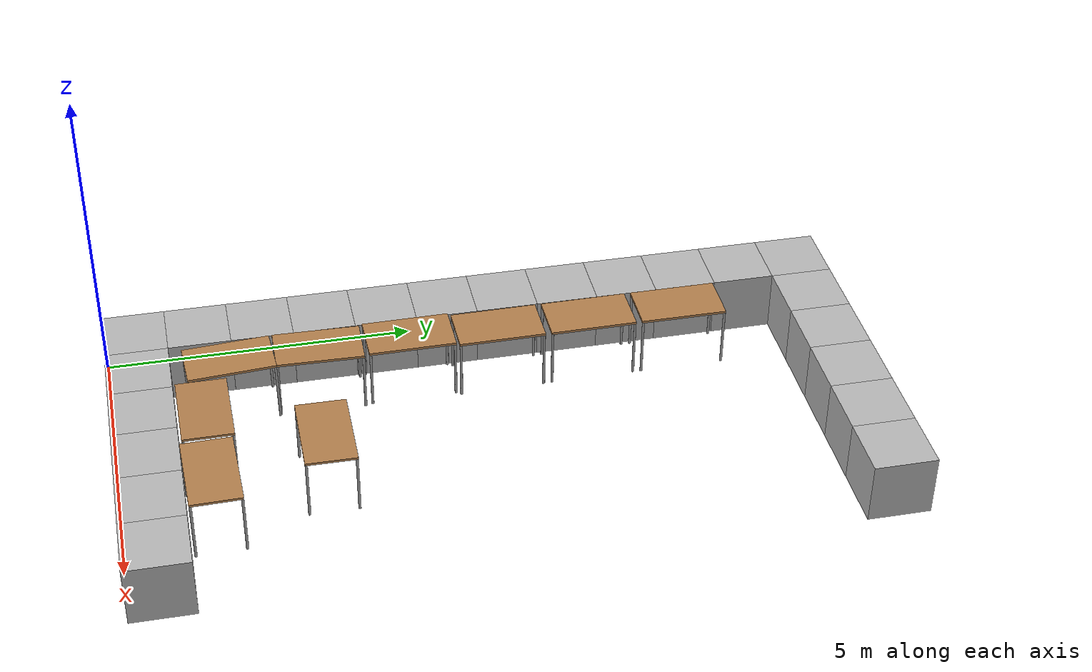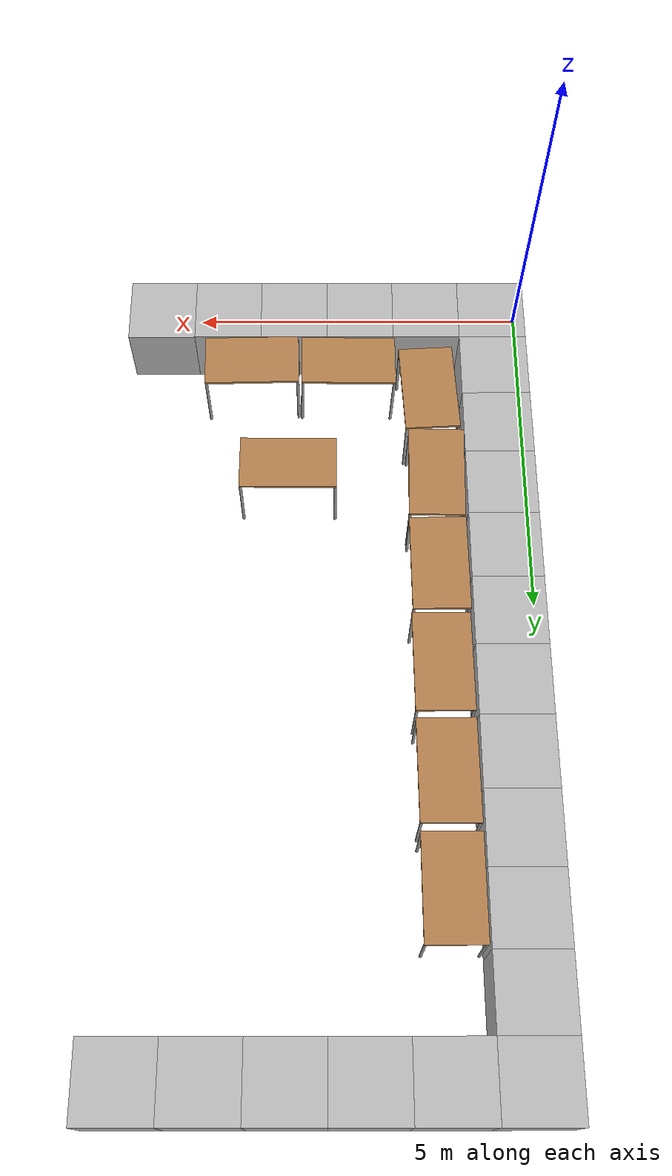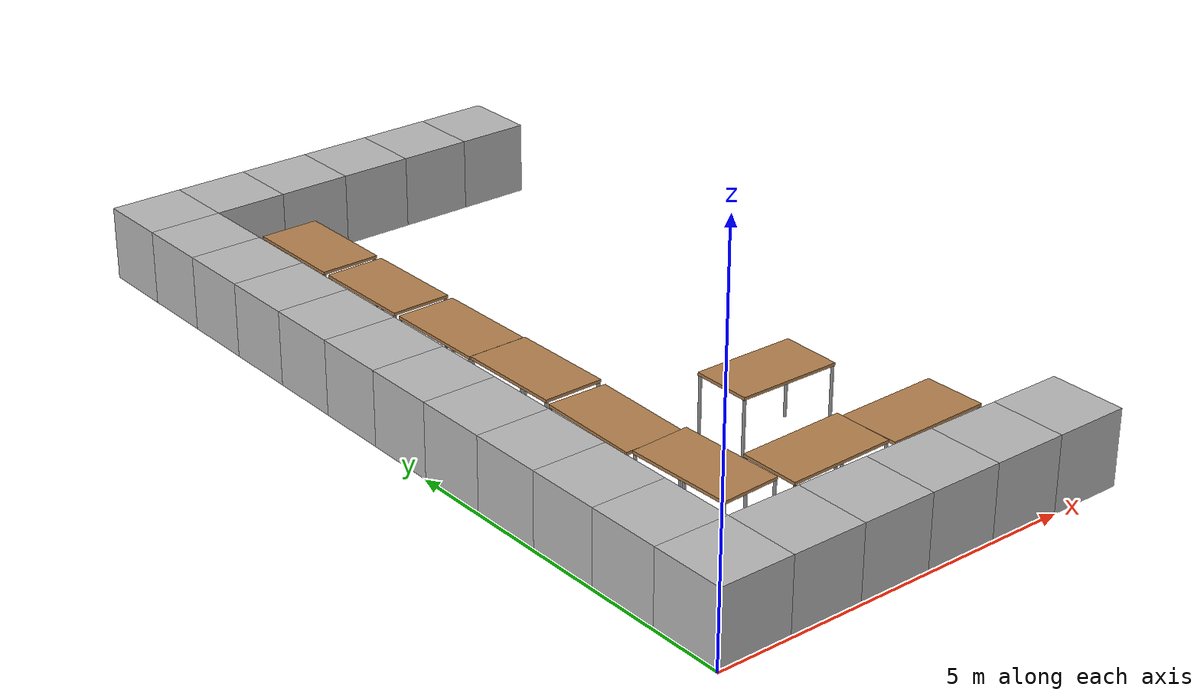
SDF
<sdf version="1.6">
 <world name="default">
  <model name="box_0_0">
   <pose>0.5 0.5 0.5 0 -0 0</pose>
   <static>1</static>
   <link name="link">
    <collision name="collision"><geometry><box><size>1 1 1</size></box></geometry></collision>
    <visual name="visual"><geometry><box><size>1 1 1</size></box></geometry></visual>
   </link>
  </model>
  <model name="box_0_1">
   <pose>0.5 1.5 0.5 0 -0 0</pose>
   <static>1</static>
   <link name="link">
    <collision name="collision"><geometry><box><size>1 1 1</size></box></geometry></collision>
    <visual name="visual"><geometry><box><size>1 1 1</size></box></geometry></visual>
   </link>
  </model>
  <model name="box_0_2">
   <pose>0.5 2.5 0.5 0 -0 0</pose>
   <static>1</static>
   <link name="link">
    <collision name="collision"><geometry><box><size>1 1 1</size></box></geometry></collision>
    <visual name="visual"><geometry><box><size>1 1 1</size></box></geometry></visual>
   </link>
  </model>
  <model name="box_0_3">
   <pose>0.5 3.5 0.5 0 -0 0</pose>
   <static>1</static>
   <link name="link">
    <collision name="collision"><geometry><box><size>1 1 1</size></box></geometry></collision>
    <visual name="visual"><geometry><box><size>1 1 1</size></box></geometry></visual>
   </link>
  </model>
  <model name="box_0_4">
   <pose>0.5 4.5 0.5 0 -0 0</pose>
   <static>1</static>
   <link name="link">
    <collision name="collision"><geometry><box><size>1 1 1</size></box></geometry></collision>
    <visual name="visual"><geometry><box><size>1 1 1</size></box></geometry></visual>
   </link>
  </model>
  <model name="box_0_5">
   <pose>0.5 5.5 0.5 0 -0 0</pose>
   <static>1</static>
   <link name="link">
    <collision name="collision"><geometry><box><size>1 1 1</size></box></geometry></collision>
    <visual name="visual"><geometry><box><size>1 1 1</size></box></geometry></visual>
   </link>
  </model>
  <model name="box_0_6">
   <pose>0.5 6.5 0.5 0 -0 0</pose>
   <static>1</static>
   <link name="link">
    <collision name="collision"><geometry><box><size>1 1 1</size></box></geometry></collision>
    <visual name="visual"><geometry><box><size>1 1 1</size></box></geometry></visual>
   </link>
  </model>
  <model name="box_0_7">
   <pose>0.5 7.5 0.5 0 -0 0</pose>
   <static>1</static>
   <link name="link">
    <collision name="collision"><geometry><box><size>1 1 1</size></box></geometry></collision>
    <visual name="visual"><geometry><box><size>1 1 1</size></box></geometry></visual>
   </link>
  </model>
  <model name="box_0_8">
   <pose>0.5 8.5 0.5 0 -0 0</pose>
   <static>1</static>
   <link name="link">
    <collision name="collision"><geometry><box><size>1 1 1</size></box></geometry></collision>
    <visual name="visual"><geometry><box><size>1 1 1</size></box></geometry></visual>
   </link>
  </model>
  <model name="box_0_9">
   <pose>0.5 9.5 0.5 0 -0 0</pose>
   <static>1</static>
   <link name="link">
    <collision name="collision"><geometry><box><size>1 1 1</size></box></geometry></collision>
    <visual name="visual"><geometry><box><size>1 1 1</size></box></geometry></visual>
   </link>
  </model>
  <model name="box_0_10">
   <pose>0.5 10.5 0.5 0 -0 0</pose>
   <static>1</static>
   <link name="link">
    <collision name="collision"><geometry><box><size>1 1 1</size></box></geometry></collision>
    <visual name="visual"><geometry><box><size>1 1 1</size></box></geometry></visual>
   </link>
  </model>
  <model name="box_0_11">
   <pose>0.5 11.5 0.5 0 -0 0</pose>
   <static>1</static>
   <link name="link">
    <collision name="collision"><geometry><box><size>1 1 1</size></box></geometry></collision>
    <visual name="visual"><geometry><box><size>1 1 1</size></box></geometry></visual>
   </link>
  </model>
  <model name="box_1_0">
   <pose>1.5 0.5 0.5 0 -0 0</pose>
   <static>1</static>
   <link name="link">
    <collision name="collision"><geometry><box><size>1 1 1</size></box></geometry></collision>
    <visual name="visual"><geometry><box><size>1 1 1</size></box></geometry></visual>
   </link>
  </model>
  <model name="box_1_11">
   <pose>1.5 11.5 0.5 0 -0 0</pose>
   <static>1</static>
   <link name="link">
    <collision name="collision"><geometry><box><size>1 1 1</size></box></geometry></collision>
    <visual name="visual"><geometry><box><size>1 1 1</size></box></geometry></visual>
   </link>
  </model>
  <model name="box_2_0">
   <pose>2.5 0.5 0.5 0 -0 0</pose>
   <static>1</static>
   <link name="link">
    <collision name="collision"><geometry><box><size>1 1 1</size></box></geometry></collision>
    <visual name="visual"><geometry><box><size>1 1 1</size></box></geometry></visual>
   </link>
  </model>
  <model name="box_2_11">
   <pose>2.5 11.5 0.5 0 -0 0</pose>
   <static>1</static>
   <link name="link">
    <collision name="collision"><geometry><box><size>1 1 1</size></box></geometry></collision>
    <visual name="visual"><geometry><box><size>1 1 1</size></box></geometry></visual>
   </link>
  </model>
  <model name="box_3_0">
   <pose>3.5 0.5 0.5 0 -0 0</pose>
   <static>1</static>
   <link name="link">
    <collision name="collision"><geometry><box><size>1 1 1</size></box></geometry></collision>
    <visual name="visual"><geometry><box><size>1 1 1</size></box></geometry></visual>
   </link>
  </model>
  <model name="box_3_11">
   <pose>3.5 11.5 0.5 0 -0 0</pose>
   <static>1</static>
   <link name="link">
    <collision name="collision"><geometry><box><size>1 1 1</size></box></geometry></collision>
    <visual name="visual"><geometry><box><size>1 1 1</size></box></geometry></visual>
   </link>
  </model>
  <model name="box_4_0">
   <pose>4.5 0.5 0.5 0 -0 0</pose>
   <static>1</static>
   <link name="link">
    <collision name="collision"><geometry><box><size>1 1 1</size></box></geometry></collision>
    <visual name="visual"><geometry><box><size>1 1 1</size></box></geometry></visual>
   </link>
  </model>
  <model name="box_4_11">
   <pose>4.5 11.5 0.5 0 -0 0</pose>
   <static>1</static>
   <link name="link">
    <collision name="collision"><geometry><box><size>1 1 1</size></box></geometry></collision>
    <visual name="visual"><geometry><box><size>1 1 1</size></box></geometry></visual>
   </link>
  </model>
  <model name="box_5_0">
   <pose>5.5 0.5 0.5 0 -0 0</pose>
   <static>1</static>
   <link name="link">
    <collision name="collision"><geometry><box><size>1 1 1</size></box></geometry></collision>
    <visual name="visual"><geometry><box><size>1 1 1</size></box></geometry></visual>
   </link>
  </model>
  <model name="box_5_11">
   <pose>5.5 11.5 0.5 0 -0 0</pose>
   <static>1</static>
   <link name="link">
    <collision name="collision"><geometry><box><size>1 1 1</size></box></geometry></collision>
    <visual name="visual"><geometry><box><size>1 1 1</size></box></geometry></visual>
   </link>
  </model>
  <model name="table_0_clone_clone_1">
   <static>0</static>
   <link name="link">
    <collision name="surface">
     <pose>0 0 1 0 -0 0</pose>
     <geometry><box><size>1.5 0.8 0.03</size></box></geometry>
     <surface><friction><ode><mu>0.6</mu><mu2>0.6</mu2></ode></friction></surface>
    </collision>
    <visual name="visual1">
     <pose>0 0 1 0 -0 0</pose>
     <geometry><box><size>1.4 0.8 0.04</size></box></geometry>
     <material>
      <script><uri>file://media/materials/scripts/gazebo.material</uri><name>Gazebo/Wood</name></script>
     </material>
    </visual>
    <collision name="front_left_leg">
     <pose>0.68 0.38 0.5 0 -0 0</pose>
     <geometry><cylinder><radius>0.02</radius><length>1</length></cylinder></geometry>
    </collision>
    <visual name="front_left_leg">
     <pose>0.68 0.38 0.5 0 -0 0</pose>
     <geometry><cylinder><radius>0.02</radius><length>1</length></cylinder></geometry>
     <material>
      <script><uri>file://media/materials/scripts/gazebo.material</uri><name>Gazebo/Grey</name></script>
     </material>
    </visual>
    <collision name="front_right_leg">
     <pose>0.68 -0.38 0.5 0 -0 0</pose>
     <geometry><cylinder><radius>0.02</radius><length>1</length></cylinder></geometry>
    </collision>
    <visual name="front_right_leg">
     <pose>0.68 -0.38 0.5 0 -0 0</pose>
     <geometry><cylinder><radius>0.02</radius><length>1</length></cylinder></geometry>
     <material>
      <script><uri>file://media/materials/scripts/gazebo.material</uri><name>Gazebo/Grey</name></script>
     </material>
    </visual>
    <collision name="back_right_leg">
     <pose>-0.68 -0.38 0.5 0 -0 0</pose>
     <geometry><cylinder><radius>0.02</radius><length>1</length></cylinder></geometry>
    </collision>
    <visual name="back_right_leg">
     <pose>-0.68 -0.38 0.5 0 -0 0</pose>
     <geometry><cylinder><radius>0.02</radius><length>1</length></cylinder></geometry>
     <material>
      <script><uri>file://media/materials/scripts/gazebo.material</uri><name>Gazebo/Grey</name></script>
     </material>
    </visual>
    <collision name="back_left_leg">
     <pose>-0.68 0.38 0.5 0 -0 0</pose>
     <geometry><cylinder><radius>0.02</radius><length>1</length></cylinder></geometry>
    </collision>
    <visual name="back_left_leg">
     <pose>-0.68 0.38 0.5 0 -0 0</pose>
     <geometry><cylinder><radius>0.02</radius><length>1</length></cylinder></geometry>
     <material>
      <script><uri>file://media/materials/scripts/gazebo.material</uri><name>Gazebo/Grey</name></script>
     </material>
    </visual>
    <inertial>
     <inertia><ixx>1</ixx><ixy>0</ixy><ixz>0</ixz><iyy>1</iyy><iyz>0</iyz><izz>1</izz></inertia>
     <mass>1</mass>
    </inertial>
   </link>
   <pose>1.49011 1.94283 0.015741 0.001644 0.021597 -1.51833</pose>
  </model>
  <model name="table_0_clone_clone_2">
   <static>0</static>
   <link name="link">
    <collision name="surface">
     <pose>0 0 1 0 -0 0</pose>
     <geometry><box><size>1.5 0.8 0.03</size></box></geometry>
     <surface><friction><ode><mu>0.6</mu><mu2>0.6</mu2></ode></friction></surface>
    </collision>
    <visual name="visual1">
     <pose>0 0 1 0 -0 0</pose>
     <geometry><box><size>1.4 0.8 0.04</size></box></geometry>
     <material>
      <script><uri>file://media/materials/scripts/gazebo.material</uri><name>Gazebo/Wood</name></script>
     </material>
    </visual>
    <collision name="front_left_leg">
     <pose>0.68 0.38 0.5 0 -0 0</pose>
     <geometry><cylinder><radius>0.02</radius><length>1</length></cylinder></geometry>
    </collision>
    <visual name="front_left_leg">
     <pose>0.68 0.38 0.5 0 -0 0</pose>
     <geometry><cylinder><radius>0.02</radius><length>1</length></cylinder></geometry>
     <material>
      <script><uri>file://media/materials/scripts/gazebo.material</uri><name>Gazebo/Grey</name></script>
     </material>
    </visual>
    <collision name="front_right_leg">
     <pose>0.68 -0.38 0.5 0 -0 0</pose>
     <geometry><cylinder><radius>0.02</radius><length>1</length></cylinder></geometry>
    </collision>
    <visual name="front_right_leg">
     <pose>0.68 -0.38 0.5 0 -0 0</pose>
     <geometry><cylinder><radius>0.02</radius><length>1</length></cylinder></geometry>
     <material>
      <script><uri>file://media/materials/scripts/gazebo.material</uri><name>Gazebo/Grey</name></script>
     </material>
    </visual>
    <collision name="back_right_leg">
     <pose>-0.68 -0.38 0.5 0 -0 0</pose>
     <geometry><cylinder><radius>0.02</radius><length>1</length></cylinder></geometry>
    </collision>
    <visual name="back_right_leg">
     <pose>-0.68 -0.38 0.5 0 -0 0</pose>
     <geometry><cylinder><radius>0.02</radius><length>1</length></cylinder></geometry>
     <material>
      <script><uri>file://media/materials/scripts/gazebo.material</uri><name>Gazebo/Grey</name></script>
     </material>
    </visual>
    <collision name="back_left_leg">
     <pose>-0.68 0.38 0.5 0 -0 0</pose>
     <geometry><cylinder><radius>0.02</radius><length>1</length></cylinder></geometry>
    </collision>
    <visual name="back_left_leg">
     <pose>-0.68 0.38 0.5 0 -0 0</pose>
     <geometry><cylinder><radius>0.02</radius><length>1</length></cylinder></geometry>
     <material>
      <script><uri>file://media/materials/scripts/gazebo.material</uri><name>Gazebo/Grey</name></script>
     </material>
    </visual>
    <inertial>
     <inertia><ixx>1</ixx><ixy>0</ixy><ixz>0</ixz><iyy>1</iyy><iyz>0</iyz><izz>1</izz></inertia>
     <mass>1</mass>
    </inertial>
   </link>
   <pose>1.42601 3.34272 -6e-06 -3e-06 3e-06 -1.59543</pose>
  </model>
  <model name="table_0_clone_clone_2_clone">
   <static>0</static>
   <link name="link">
    <collision name="surface">
     <pose>0 0 1 0 -0 0</pose>
     <geometry><box><size>1.5 0.8 0.03</size></box></geometry>
     <surface><friction><ode><mu>0.6</mu><mu2>0.6</mu2></ode></friction></surface>
    </collision>
    <visual name="visual1">
     <pose>0 0 1 0 -0 0</pose>
     <geometry><box><size>1.4 0.8 0.04</size></box></geometry>
     <material>
      <script><uri>file://media/materials/scripts/gazebo.material</uri><name>Gazebo/Wood</name></script>
     </material>
    </visual>
    <collision name="front_left_leg">
     <pose>0.68 0.38 0.5 0 -0 0</pose>
     <geometry><cylinder><radius>0.02</radius><length>1</length></cylinder></geometry>
    </collision>
    <visual name="front_left_leg">
     <pose>0.68 0.38 0.5 0 -0 0</pose>
     <geometry><cylinder><radius>0.02</radius><length>1</length></cylinder></geometry>
     <material>
      <script><uri>file://media/materials/scripts/gazebo.material</uri><name>Gazebo/Grey</name></script>
     </material>
    </visual>
    <collision name="front_right_leg">
     <pose>0.68 -0.38 0.5 0 -0 0</pose>
     <geometry><cylinder><radius>0.02</radius><length>1</length></cylinder></geometry>
    </collision>
    <visual name="front_right_leg">
     <pose>0.68 -0.38 0.5 0 -0 0</pose>
     <geometry><cylinder><radius>0.02</radius><length>1</length></cylinder></geometry>
     <material>
      <script><uri>file://media/materials/scripts/gazebo.material</uri><name>Gazebo/Grey</name></script>
     </material>
    </visual>
    <collision name="back_right_leg">
     <pose>-0.68 -0.38 0.5 0 -0 0</pose>
     <geometry><cylinder><radius>0.02</radius><length>1</length></cylinder></geometry>
    </collision>
    <visual name="back_right_leg">
     <pose>-0.68 -0.38 0.5 0 -0 0</pose>
     <geometry><cylinder><radius>0.02</radius><length>1</length></cylinder></geometry>
     <material>
      <script><uri>file://media/materials/scripts/gazebo.material</uri><name>Gazebo/Grey</name></script>
     </material>
    </visual>
    <collision name="back_left_leg">
     <pose>-0.68 0.38 0.5 0 -0 0</pose>
     <geometry><cylinder><radius>0.02</radius><length>1</length></cylinder></geometry>
    </collision>
    <visual name="back_left_leg">
     <pose>-0.68 0.38 0.5 0 -0 0</pose>
     <geometry><cylinder><radius>0.02</radius><length>1</length></cylinder></geometry>
     <material>
      <script><uri>file://media/materials/scripts/gazebo.material</uri><name>Gazebo/Grey</name></script>
     </material>
    </visual>
    <inertial>
     <inertia><ixx>1</ixx><ixy>0</ixy><ixz>0</ixz><iyy>1</iyy><iyz>0</iyz><izz>1</izz></inertia>
     <mass>1</mass>
    </inertial>
   </link>
   <pose>1.43961 4.80476 0.029986 1e-06 -2.2e-05 -1.563</pose>
  </model>
  <model name="table_0_clone_clone_2_clone_0">
   <static>0</static>
   <link name="link">
    <collision name="surface">
     <pose>0 0 1 0 -0 0</pose>
     <geometry><box><size>1.5 0.8 0.03</size></box></geometry>
     <surface><friction><ode><mu>0.6</mu><mu2>0.6</mu2></ode></friction></surface>
    </collision>
    <visual name="visual1">
     <pose>0 0 1 0 -0 0</pose>
     <geometry><box><size>1.4 0.8 0.04</size></box></geometry>
     <material>
      <script><uri>file://media/materials/scripts/gazebo.material</uri><name>Gazebo/Wood</name></script>
     </material>
    </visual>
    <collision name="front_left_leg">
     <pose>0.68 0.38 0.5 0 -0 0</pose>
     <geometry><cylinder><radius>0.02</radius><length>1</length></cylinder></geometry>
    </collision>
    <visual name="front_left_leg">
     <pose>0.68 0.38 0.5 0 -0 0</pose>
     <geometry><cylinder><radius>0.02</radius><length>1</length></cylinder></geometry>
     <material>
      <script><uri>file://media/materials/scripts/gazebo.material</uri><name>Gazebo/Grey</name></script>
     </material>
    </visual>
    <collision name="front_right_leg">
     <pose>0.68 -0.38 0.5 0 -0 0</pose>
     <geometry><cylinder><radius>0.02</radius><length>1</length></cylinder></geometry>
    </collision>
    <visual name="front_right_leg">
     <pose>0.68 -0.38 0.5 0 -0 0</pose>
     <geometry><cylinder><radius>0.02</radius><length>1</length></cylinder></geometry>
     <material>
      <script><uri>file://media/materials/scripts/gazebo.material</uri><name>Gazebo/Grey</name></script>
     </material>
    </visual>
    <collision name="back_right_leg">
     <pose>-0.68 -0.38 0.5 0 -0 0</pose>
     <geometry><cylinder><radius>0.02</radius><length>1</length></cylinder></geometry>
    </collision>
    <visual name="back_right_leg">
     <pose>-0.68 -0.38 0.5 0 -0 0</pose>
     <geometry><cylinder><radius>0.02</radius><length>1</length></cylinder></geometry>
     <material>
      <script><uri>file://media/materials/scripts/gazebo.material</uri><name>Gazebo/Grey</name></script>
     </material>
    </visual>
    <collision name="back_left_leg">
     <pose>-0.68 0.38 0.5 0 -0 0</pose>
     <geometry><cylinder><radius>0.02</radius><length>1</length></cylinder></geometry>
    </collision>
    <visual name="back_left_leg">
     <pose>-0.68 0.38 0.5 0 -0 0</pose>
     <geometry><cylinder><radius>0.02</radius><length>1</length></cylinder></geometry>
     <material>
      <script><uri>file://media/materials/scripts/gazebo.material</uri><name>Gazebo/Grey</name></script>
     </material>
    </visual>
    <inertial>
     <inertia><ixx>1</ixx><ixy>0</ixy><ixz>0</ixz><iyy>1</iyy><iyz>0</iyz><izz>1</izz></inertia>
     <mass>1</mass>
    </inertial>
   </link>
   <pose>1.44374 6.25489 -2.6e-05 1e-06 5e-06 -1.56296</pose>
  </model>
  <model name="table_0_clone_clone_2_clone_1">
   <static>0</static>
   <link name="link">
    <collision name="surface">
     <pose>0 0 1 0 -0 0</pose>
     <geometry><box><size>1.5 0.8 0.03</size></box></geometry>
     <surface><friction><ode><mu>0.6</mu><mu2>0.6</mu2></ode></friction></surface>
    </collision>
    <visual name="visual1">
     <pose>0 0 1 0 -0 0</pose>
     <geometry><box><size>1.4 0.8 0.04</size></box></geometry>
     <material>
      <script><uri>file://media/materials/scripts/gazebo.material</uri><name>Gazebo/Wood</name></script>
     </material>
    </visual>
    <collision name="front_left_leg">
     <pose>0.68 0.38 0.5 0 -0 0</pose>
     <geometry><cylinder><radius>0.02</radius><length>1</length></cylinder></geometry>
    </collision>
    <visual name="front_left_leg">
     <pose>0.68 0.38 0.5 0 -0 0</pose>
     <geometry><cylinder><radius>0.02</radius><length>1</length></cylinder></geometry>
     <material>
      <script><uri>file://media/materials/scripts/gazebo.material</uri><name>Gazebo/Grey</name></script>
     </material>
    </visual>
    <collision name="front_right_leg">
     <pose>0.68 -0.38 0.5 0 -0 0</pose>
     <geometry><cylinder><radius>0.02</radius><length>1</length></cylinder></geometry>
    </collision>
    <visual name="front_right_leg">
     <pose>0.68 -0.38 0.5 0 -0 0</pose>
     <geometry><cylinder><radius>0.02</radius><length>1</length></cylinder></geometry>
     <material>
      <script><uri>file://media/materials/scripts/gazebo.material</uri><name>Gazebo/Grey</name></script>
     </material>
    </visual>
    <collision name="back_right_leg">
     <pose>-0.68 -0.38 0.5 0 -0 0</pose>
     <geometry><cylinder><radius>0.02</radius><length>1</length></cylinder></geometry>
    </collision>
    <visual name="back_right_leg">
     <pose>-0.68 -0.38 0.5 0 -0 0</pose>
     <geometry><cylinder><radius>0.02</radius><length>1</length></cylinder></geometry>
     <material>
      <script><uri>file://media/materials/scripts/gazebo.material</uri><name>Gazebo/Grey</name></script>
     </material>
    </visual>
    <collision name="back_left_leg">
     <pose>-0.68 0.38 0.5 0 -0 0</pose>
     <geometry><cylinder><radius>0.02</radius><length>1</length></cylinder></geometry>
    </collision>
    <visual name="back_left_leg">
     <pose>-0.68 0.38 0.5 0 -0 0</pose>
     <geometry><cylinder><radius>0.02</radius><length>1</length></cylinder></geometry>
     <material>
      <script><uri>file://media/materials/scripts/gazebo.material</uri><name>Gazebo/Grey</name></script>
     </material>
    </visual>
    <inertial>
     <inertia><ixx>1</ixx><ixy>0</ixy><ixz>0</ixz><iyy>1</iyy><iyz>0</iyz><izz>1</izz></inertia>
     <mass>1</mass>
    </inertial>
   </link>
   <pose>1.43426 7.75486 -2e-06 0 2e-06 -1.56295</pose>
  </model>
  <model name="table_0_clone_clone_2_clone_1_clone">
   <static>0</static>
   <link name="link">
    <collision name="surface">
     <pose>0 0 1 0 -0 0</pose>
     <geometry><box><size>1.5 0.8 0.03</size></box></geometry>
     <surface><friction><ode><mu>0.6</mu><mu2>0.6</mu2></ode></friction></surface>
    </collision>
    <visual name="visual1">
     <pose>0 0 1 0 -0 0</pose>
     <geometry><box><size>1.4 0.8 0.04</size></box></geometry>
     <material>
      <script><uri>file://media/materials/scripts/gazebo.material</uri><name>Gazebo/Wood</name></script>
     </material>
    </visual>
    <collision name="front_left_leg">
     <pose>0.68 0.38 0.5 0 -0 0</pose>
     <geometry><cylinder><radius>0.02</radius><length>1</length></cylinder></geometry>
    </collision>
    <visual name="front_left_leg">
     <pose>0.68 0.38 0.5 0 -0 0</pose>
     <geometry><cylinder><radius>0.02</radius><length>1</length></cylinder></geometry>
     <material>
      <script><uri>file://media/materials/scripts/gazebo.material</uri><name>Gazebo/Grey</name></script>
     </material>
    </visual>
    <collision name="front_right_leg">
     <pose>0.68 -0.38 0.5 0 -0 0</pose>
     <geometry><cylinder><radius>0.02</radius><length>1</length></cylinder></geometry>
    </collision>
    <visual name="front_right_leg">
     <pose>0.68 -0.38 0.5 0 -0 0</pose>
     <geometry><cylinder><radius>0.02</radius><length>1</length></cylinder></geometry>
     <material>
      <script><uri>file://media/materials/scripts/gazebo.material</uri><name>Gazebo/Grey</name></script>
     </material>
    </visual>
    <collision name="back_right_leg">
     <pose>-0.68 -0.38 0.5 0 -0 0</pose>
     <geometry><cylinder><radius>0.02</radius><length>1</length></cylinder></geometry>
    </collision>
    <visual name="back_right_leg">
     <pose>-0.68 -0.38 0.5 0 -0 0</pose>
     <geometry><cylinder><radius>0.02</radius><length>1</length></cylinder></geometry>
     <material>
      <script><uri>file://media/materials/scripts/gazebo.material</uri><name>Gazebo/Grey</name></script>
     </material>
    </visual>
    <collision name="back_left_leg">
     <pose>-0.68 0.38 0.5 0 -0 0</pose>
     <geometry><cylinder><radius>0.02</radius><length>1</length></cylinder></geometry>
    </collision>
    <visual name="back_left_leg">
     <pose>-0.68 0.38 0.5 0 -0 0</pose>
     <geometry><cylinder><radius>0.02</radius><length>1</length></cylinder></geometry>
     <material>
      <script><uri>file://media/materials/scripts/gazebo.material</uri><name>Gazebo/Grey</name></script>
     </material>
    </visual>
    <inertial>
     <inertia><ixx>1</ixx><ixy>0</ixy><ixz>0</ixz><iyy>1</iyy><iyz>0</iyz><izz>1</izz></inertia>
     <mass>1</mass>
    </inertial>
   </link>
   <pose>1.42725 9.25752 -8e-06 0 0 -1.56967</pose>
  </model>
  <model name="table_clone_0_clone">
   <static>0</static>
   <link name="link">
    <collision name="surface">
     <pose>0 0 1 0 -0 0</pose>
     <geometry><box><size>1.5 0.8 0.03</size></box></geometry>
     <surface><friction><ode><mu>0.6</mu><mu2>0.6</mu2></ode></friction></surface>
    </collision>
    <visual name="visual1">
     <pose>0 0 1 0 -0 0</pose>
     <geometry><box><size>1.4 0.8 0.04</size></box></geometry>
     <material>
      <script><uri>file://media/materials/scripts/gazebo.material</uri><name>Gazebo/Wood</name></script>
     </material>
    </visual>
    <collision name="front_left_leg">
     <pose>0.68 0.38 0.5 0 -0 0</pose>
     <geometry><cylinder><radius>0.02</radius><length>1</length></cylinder></geometry>
    </collision>
    <visual name="front_left_leg">
     <pose>0.68 0.38 0.5 0 -0 0</pose>
     <geometry><cylinder><radius>0.02</radius><length>1</length></cylinder></geometry>
     <material>
      <script><uri>file://media/materials/scripts/gazebo.material</uri><name>Gazebo/Grey</name></script>
     </material>
    </visual>
    <collision name="front_right_leg">
     <pose>0.68 -0.38 0.5 0 -0 0</pose>
     <geometry><cylinder><radius>0.02</radius><length>1</length></cylinder></geometry>
    </collision>
    <visual name="front_right_leg">
     <pose>0.68 -0.38 0.5 0 -0 0</pose>
     <geometry><cylinder><radius>0.02</radius><length>1</length></cylinder></geometry>
     <material>
      <script><uri>file://media/materials/scripts/gazebo.material</uri><name>Gazebo/Grey</name></script>
     </material>
    </visual>
    <collision name="back_right_leg">
     <pose>-0.68 -0.38 0.5 0 -0 0</pose>
     <geometry><cylinder><radius>0.02</radius><length>1</length></cylinder></geometry>
    </collision>
    <visual name="back_right_leg">
     <pose>-0.68 -0.38 0.5 0 -0 0</pose>
     <geometry><cylinder><radius>0.02</radius><length>1</length></cylinder></geometry>
     <material>
      <script><uri>file://media/materials/scripts/gazebo.material</uri><name>Gazebo/Grey</name></script>
     </material>
    </visual>
    <collision name="back_left_leg">
     <pose>-0.68 0.38 0.5 0 -0 0</pose>
     <geometry><cylinder><radius>0.02</radius><length>1</length></cylinder></geometry>
    </collision>
    <visual name="back_left_leg">
     <pose>-0.68 0.38 0.5 0 -0 0</pose>
     <geometry><cylinder><radius>0.02</radius><length>1</length></cylinder></geometry>
     <material>
      <script><uri>file://media/materials/scripts/gazebo.material</uri><name>Gazebo/Grey</name></script>
     </material>
    </visual>
    <inertial>
     <inertia><ixx>1</ixx><ixy>0</ixy><ixz>0</ixz><iyy>1</iyy><iyz>0</iyz><izz>1</izz></inertia>
     <mass>1</mass>
    </inertial>
   </link>
   <pose>3.55881 3.19191 -1e-06 1e-06 -1e-06 -0.007666</pose>
  </model>
  <model name="table_clone_0_clone_clone">
   <static>0</static>
   <link name="link">
    <collision name="surface">
     <pose>0 0 1 0 -0 0</pose>
     <geometry><box><size>1.5 0.8 0.03</size></box></geometry>
     <surface><friction><ode><mu>0.6</mu><mu2>0.6</mu2></ode></friction></surface>
    </collision>
    <visual name="visual1">
     <pose>0 0 1 0 -0 0</pose>
     <geometry><box><size>1.4 0.8 0.04</size></box></geometry>
     <material>
      <script><uri>file://media/materials/scripts/gazebo.material</uri><name>Gazebo/Wood</name></script>
     </material>
    </visual>
    <collision name="front_left_leg">
     <pose>0.68 0.38 0.5 0 -0 0</pose>
     <geometry><cylinder><radius>0.02</radius><length>1</length></cylinder></geometry>
    </collision>
    <visual name="front_left_leg">
     <pose>0.68 0.38 0.5 0 -0 0</pose>
     <geometry><cylinder><radius>0.02</radius><length>1</length></cylinder></geometry>
     <material>
      <script><uri>file://media/materials/scripts/gazebo.material</uri><name>Gazebo/Grey</name></script>
     </material>
    </visual>
    <collision name="front_right_leg">
     <pose>0.68 -0.38 0.5 0 -0 0</pose>
     <geometry><cylinder><radius>0.02</radius><length>1</length></cylinder></geometry>
    </collision>
    <visual name="front_right_leg">
     <pose>0.68 -0.38 0.5 0 -0 0</pose>
     <geometry><cylinder><radius>0.02</radius><length>1</length></cylinder></geometry>
     <material>
      <script><uri>file://media/materials/scripts/gazebo.material</uri><name>Gazebo/Grey</name></script>
     </material>
    </visual>
    <collision name="back_right_leg">
     <pose>-0.68 -0.38 0.5 0 -0 0</pose>
     <geometry><cylinder><radius>0.02</radius><length>1</length></cylinder></geometry>
    </collision>
    <visual name="back_right_leg">
     <pose>-0.68 -0.38 0.5 0 -0 0</pose>
     <geometry><cylinder><radius>0.02</radius><length>1</length></cylinder></geometry>
     <material>
      <script><uri>file://media/materials/scripts/gazebo.material</uri><name>Gazebo/Grey</name></script>
     </material>
    </visual>
    <collision name="back_left_leg">
     <pose>-0.68 0.38 0.5 0 -0 0</pose>
     <geometry><cylinder><radius>0.02</radius><length>1</length></cylinder></geometry>
    </collision>
    <visual name="back_left_leg">
     <pose>-0.68 0.38 0.5 0 -0 0</pose>
     <geometry><cylinder><radius>0.02</radius><length>1</length></cylinder></geometry>
     <material>
      <script><uri>file://media/materials/scripts/gazebo.material</uri><name>Gazebo/Grey</name></script>
     </material>
    </visual>
    <inertial>
     <inertia><ixx>1</ixx><ixy>0</ixy><ixz>0</ixz><iyy>1</iyy><iyz>0</iyz><izz>1</izz></inertia>
     <mass>1</mass>
    </inertial>
   </link>
   <pose>2.69975 1.44202 0.015268 1.5e-05 -0.021805 0.002372</pose>
  </model>
  <model name="table_clone_0_clone_clone_0">
   <static>0</static>
   <link name="link">
    <collision name="surface">
     <pose>0 0 1 0 -0 0</pose>
     <geometry><box><size>1.5 0.8 0.03</size></box></geometry>
     <surface><friction><ode><mu>0.6</mu><mu2>0.6</mu2></ode></friction></surface>
    </collision>
    <visual name="visual1">
     <pose>0 0 1 0 -0 0</pose>
     <geometry><box><size>1.4 0.8 0.04</size></box></geometry>
     <material>
      <script><uri>file://media/materials/scripts/gazebo.material</uri><name>Gazebo/Wood</name></script>
     </material>
    </visual>
    <collision name="front_left_leg">
     <pose>0.68 0.38 0.5 0 -0 0</pose>
     <geometry><cylinder><radius>0.02</radius><length>1</length></cylinder></geometry>
    </collision>
    <visual name="front_left_leg">
     <pose>0.68 0.38 0.5 0 -0 0</pose>
     <geometry><cylinder><radius>0.02</radius><length>1</length></cylinder></geometry>
     <material>
      <script><uri>file://media/materials/scripts/gazebo.material</uri><name>Gazebo/Grey</name></script>
     </material>
    </visual>
    <collision name="front_right_leg">
     <pose>0.68 -0.38 0.5 0 -0 0</pose>
     <geometry><cylinder><radius>0.02</radius><length>1</length></cylinder></geometry>
    </collision>
    <visual name="front_right_leg">
     <pose>0.68 -0.38 0.5 0 -0 0</pose>
     <geometry><cylinder><radius>0.02</radius><length>1</length></cylinder></geometry>
     <material>
      <script><uri>file://media/materials/scripts/gazebo.material</uri><name>Gazebo/Grey</name></script>
     </material>
    </visual>
    <collision name="back_right_leg">
     <pose>-0.68 -0.38 0.5 0 -0 0</pose>
     <geometry><cylinder><radius>0.02</radius><length>1</length></cylinder></geometry>
    </collision>
    <visual name="back_right_leg">
     <pose>-0.68 -0.38 0.5 0 -0 0</pose>
     <geometry><cylinder><radius>0.02</radius><length>1</length></cylinder></geometry>
     <material>
      <script><uri>file://media/materials/scripts/gazebo.material</uri><name>Gazebo/Grey</name></script>
     </material>
    </visual>
    <collision name="back_left_leg">
     <pose>-0.68 0.38 0.5 0 -0 0</pose>
     <geometry><cylinder><radius>0.02</radius><length>1</length></cylinder></geometry>
    </collision>
    <visual name="back_left_leg">
     <pose>-0.68 0.38 0.5 0 -0 0</pose>
     <geometry><cylinder><radius>0.02</radius><length>1</length></cylinder></geometry>
     <material>
      <script><uri>file://media/materials/scripts/gazebo.material</uri><name>Gazebo/Grey</name></script>
     </material>
    </visual>
    <inertial>
     <inertia><ixx>1</ixx><ixy>0</ixy><ixz>0</ixz><iyy>1</iyy><iyz>0</iyz><izz>1</izz></inertia>
     <mass>1</mass>
    </inertial>
   </link>
   <pose>4.12202 1.4209 0 0 -0 0.021933</pose>
  </model>
 </world>
</sdf>
